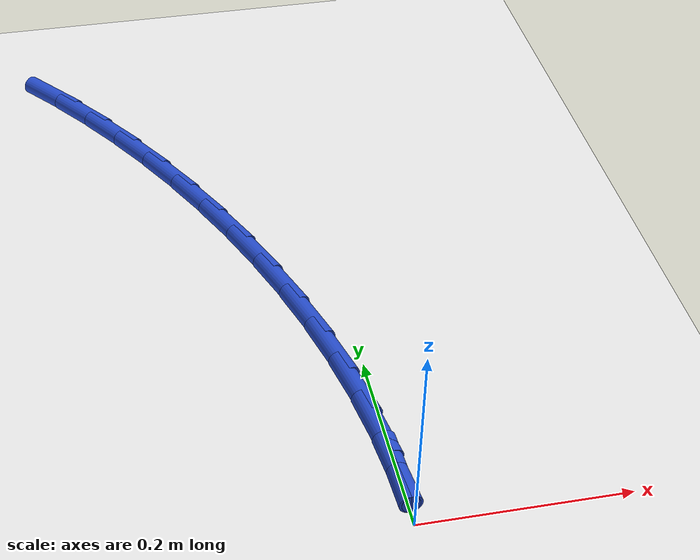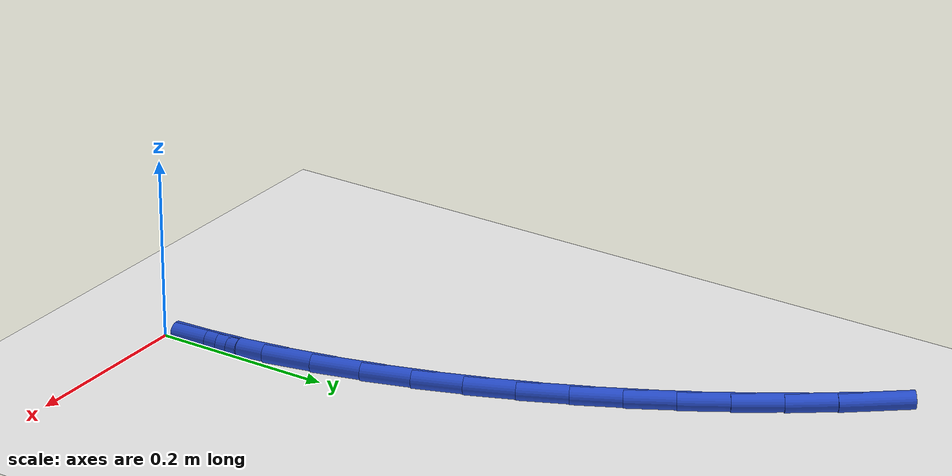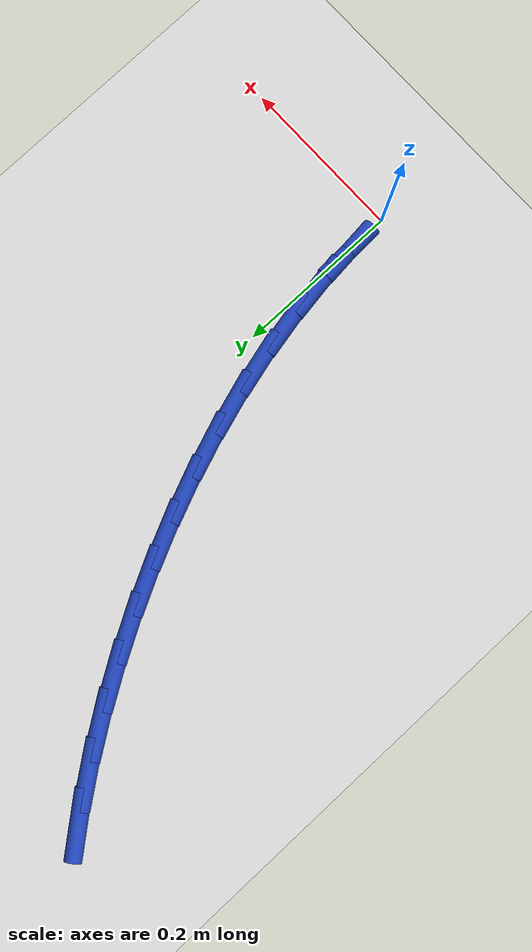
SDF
<sdf version="1.6">
 <world name="default">
  <model name="ground_plane">
   <static>1</static>
   <link name="link">
    <collision name="collision">
     <geometry><plane><normal>0 0 1</normal><size>100 100</size></plane></geometry>
     <surface><friction><ode><mu>100</mu><mu2>50</mu2></ode></friction></surface>
    </collision>
    <visual name="visual">
     <cast_shadows>0</cast_shadows>
     <geometry><plane><normal>0 0 1</normal><size>100 100</size></plane></geometry>
     <material>
      <script><uri>file://media/materials/scripts/gazebo.material</uri><name>Gazebo/WhiteGlow</name></script>
     </material>
    </visual>
   </link>
  </model>
  <model name="line">
   <link name="link_1">
    <pose>-0.0022941401122548305 0.05476679003599192 0.01 0 1.57 -1.470672752769408</pose>
    <collision name="collision">
     <geometry><cylinder><radius>0.01</radius><length>0.08</length></cylinder></geometry>
    </collision>
    <visual name="visual">
     <material>
      <script><name>Gazebo/Blue</name><uri>file://media/materials/scripts/gazebo.material</uri></script>
     </material>
     <geometry><cylinder><radius>0.01</radius><length>0.08</length></cylinder></geometry>
    </visual>
   </link>
   <link name="link_2">
    <pose>-0.00777446484097754 0.10931937274193215 0.01 0 1.57 -1.4152524196391663</pose>
    <collision name="collision">
     <geometry><cylinder><radius>0.01</radius><length>0.08</length></cylinder></geometry>
    </collision>
    <visual name="visual">
     <material>
      <script><name>Gazebo/Blue</name><uri>file://media/materials/scripts/gazebo.material</uri></script>
     </material>
     <geometry><cylinder><radius>0.01</radius><length>0.08</length></cylinder></geometry>
    </visual>
   </link>
   <link name="link_3">
    <pose>-0.016276929557888002 0.16354061957867103 0.01 0 1.57 -1.3625883641132528</pose>
    <collision name="collision">
     <geometry><cylinder><radius>0.01</radius><length>0.08</length></cylinder></geometry>
    </collision>
    <visual name="visual">
     <material>
      <script><name>Gazebo/Blue</name><uri>file://media/materials/scripts/gazebo.material</uri></script>
     </material>
     <geometry><cylinder><radius>0.01</radius><length>0.08</length></cylinder></geometry>
    </visual>
   </link>
   <link name="link_4">
    <pose>-0.0276374896347061 0.2173134020070586 0.01 0 1.57 -1.3125461886591587</pose>
    <collision name="collision">
     <geometry><cylinder><radius>0.01</radius><length>0.08</length></cylinder></geometry>
    </collision>
    <visual name="visual">
     <material>
      <script><name>Gazebo/Blue</name><uri>file://media/materials/scripts/gazebo.material</uri></script>
     </material>
     <geometry><cylinder><radius>0.01</radius><length>0.08</length></cylinder></geometry>
    </visual>
   </link>
   <link name="link_5">
    <pose>-0.04169210044315179 0.2705205914879452 0.01 0 1.57 -1.264953070531202</pose>
    <collision name="collision">
     <geometry><cylinder><radius>0.01</radius><length>0.08</length></cylinder></geometry>
    </collision>
    <visual name="visual">
     <material>
      <script><name>Gazebo/Blue</name><uri>file://media/materials/scripts/gazebo.material</uri></script>
     </material>
     <geometry><cylinder><radius>0.01</radius><length>0.08</length></cylinder></geometry>
    </visual>
   </link>
   <link name="link_6">
    <pose>-0.05827671735494495 0.32304505948218115 0.01 0 1.57 -1.2196091440573484</pose>
    <collision name="collision">
     <geometry><cylinder><radius>0.01</radius><length>0.08</length></cylinder></geometry>
    </collision>
    <visual name="visual">
     <material>
      <script><name>Gazebo/Blue</name><uri>file://media/materials/scripts/gazebo.material</uri></script>
     </material>
     <geometry><cylinder><radius>0.01</radius><length>0.08</length></cylinder></geometry>
    </visual>
   </link>
   <link name="link_7">
    <pose>-0.07722729574180548 0.37476967745061623 0.01 0 1.57 -1.1762962868352635</pose>
    <collision name="collision">
     <geometry><cylinder><radius>0.01</radius><length>0.08</length></cylinder></geometry>
    </collision>
    <visual name="visual">
     <material>
      <script><name>Gazebo/Blue</name><uri>file://media/materials/scripts/gazebo.material</uri></script>
     </material>
     <geometry><cylinder><radius>0.01</radius><length>0.08</length></cylinder></geometry>
    </visual>
   </link>
   <link name="link_8">
    <pose>-0.09837979097545324 0.4255773168541007 0.01 0 1.57 -1.1347844077855163</pose>
    <collision name="collision">
     <geometry><cylinder><radius>0.01</radius><length>0.08</length></cylinder></geometry>
    </collision>
    <visual name="visual">
     <material>
      <script><name>Gazebo/Blue</name><uri>file://media/materials/scripts/gazebo.material</uri></script>
     </material>
     <geometry><cylinder><radius>0.01</radius><length>0.08</length></cylinder></geometry>
    </visual>
   </link>
   <link name="link_9">
    <pose>-0.12157015842760827 0.47535084915348513 0.01 0 1.57 -1.094786946622856</pose>
    <collision name="collision">
     <geometry><cylinder><radius>0.01</radius><length>0.08</length></cylinder></geometry>
    </collision>
    <visual name="visual">
     <material>
      <script><name>Gazebo/Blue</name><uri>file://media/materials/scripts/gazebo.material</uri></script>
     </material>
     <geometry><cylinder><radius>0.01</radius><length>0.08</length></cylinder></geometry>
    </visual>
   </link>
   <link name="link_10">
    <pose>-0.1466382289454288 0.5239748693896265 0.01 0 1.57 -1.054981160846508</pose>
    <collision name="collision">
     <geometry><cylinder><radius>0.01</radius><length>0.08</length></cylinder></geometry>
    </collision>
    <visual name="visual">
     <material>
      <script><name>Gazebo/Blue</name><uri>file://media/materials/scripts/gazebo.material</uri></script>
     </material>
     <geometry><cylinder><radius>0.01</radius><length>0.08</length></cylinder></geometry>
    </visual>
   </link>
   <link name="link_11">
    <pose>-0.17351459787181994 0.5713743392300592 0.01 0 1.57 -1.0142407440537466</pose>
    <collision name="collision">
     <geometry><cylinder><radius>0.01</radius><length>0.08</length></cylinder></geometry>
    </collision>
    <visual name="visual">
     <material>
      <script><name>Gazebo/Blue</name><uri>file://media/materials/scripts/gazebo.material</uri></script>
     </material>
     <geometry><cylinder><radius>0.01</radius><length>0.08</length></cylinder></geometry>
    </visual>
   </link>
   <link name="link_12">
    <pose>-0.2022215391278182 0.6175149934982462 0.01 0 1.57 -0.9726099834384032</pose>
    <collision name="collision">
     <geometry><cylinder><radius>0.01</radius><length>0.08</length></cylinder></geometry>
    </collision>
    <visual name="visual">
     <material>
      <script><name>Gazebo/Blue</name><uri>file://media/materials/scripts/gazebo.material</uri></script>
     </material>
     <geometry><cylinder><radius>0.01</radius><length>0.08</length></cylinder></geometry>
    </visual>
   </link>
   <link name="link_13">
    <pose>-0.2327853849321298 0.6623643719060651 0.01 0 1.57 -0.9302004021516522</pose>
    <collision name="collision">
     <geometry><cylinder><radius>0.01</radius><length>0.08</length></cylinder></geometry>
    </collision>
    <visual name="visual">
     <material>
      <script><name>Gazebo/Blue</name><uri>file://media/materials/scripts/gazebo.material</uri></script>
     </material>
     <geometry><cylinder><radius>0.01</radius><length>0.08</length></cylinder></geometry>
    </visual>
   </link>
   <link name="link_14">
    <pose>-0.26523246750346113 0.7058900141653947 0.01 0 1.57 -0.8871388600460629</pose>
    <collision name="collision">
     <geometry><cylinder><radius>0.01</radius><length>0.08</length></cylinder></geometry>
    </collision>
    <visual name="visual">
     <material>
      <script><name>Gazebo/Blue</name><uri>file://media/materials/scripts/gazebo.material</uri></script>
     </material>
     <geometry><cylinder><radius>0.01</radius><length>0.08</length></cylinder></geometry>
    </visual>
   </link>
   <link name="link_121">
    <pose>-0.0023345093252765473 0.05475657534606643 0.01 0 1.57 -1.5281878111328777</pose>
    <collision name="collision">
     <geometry><cylinder><radius>0.01</radius><length>0.08</length></cylinder></geometry>
    </collision>
    <visual name="visual">
     <material>
      <script><name>Gazebo/Blue</name><uri>file://media/materials/scripts/gazebo.material</uri></script>
     </material>
     <geometry><cylinder><radius>0.01</radius><length>0.08</length></cylinder></geometry>
    </visual>
   </link>
  </model>
 </world>
</sdf>
